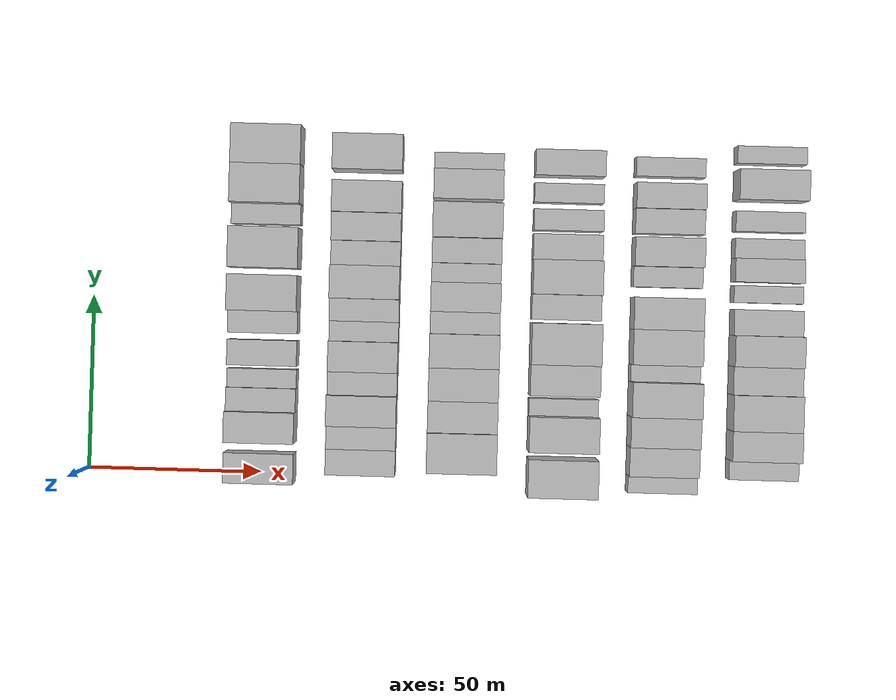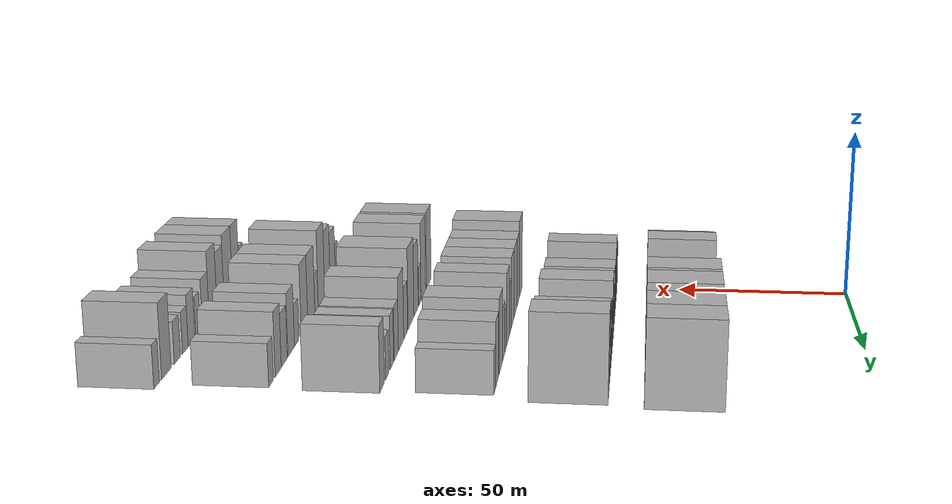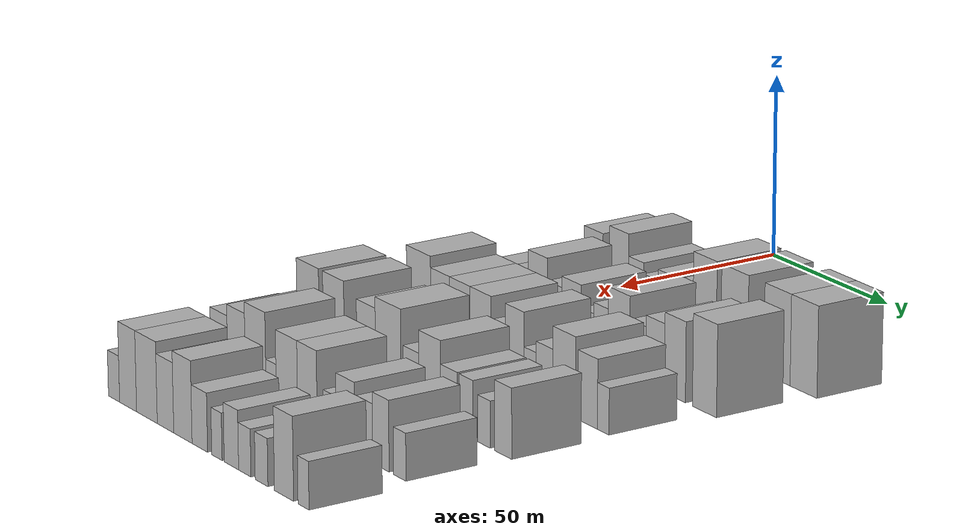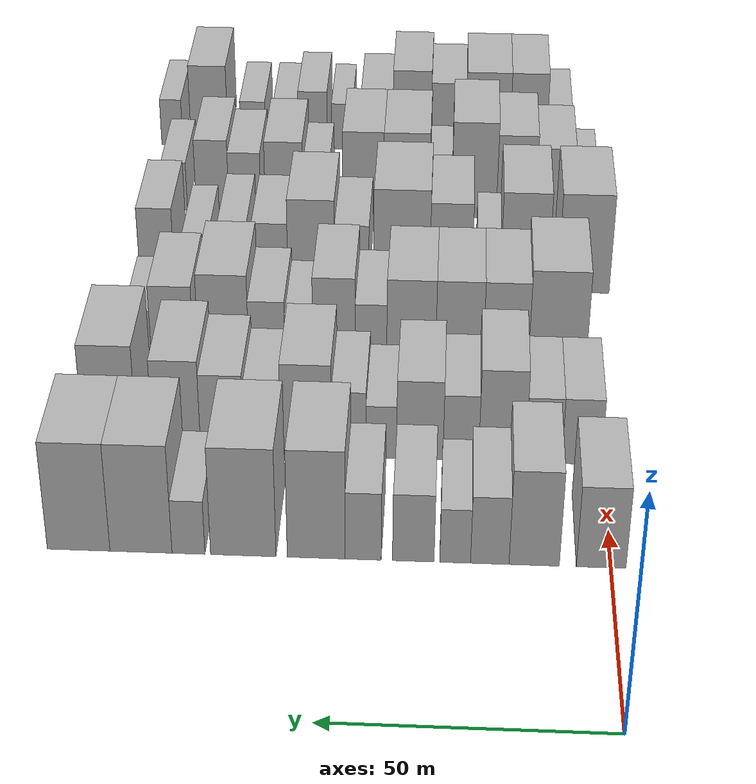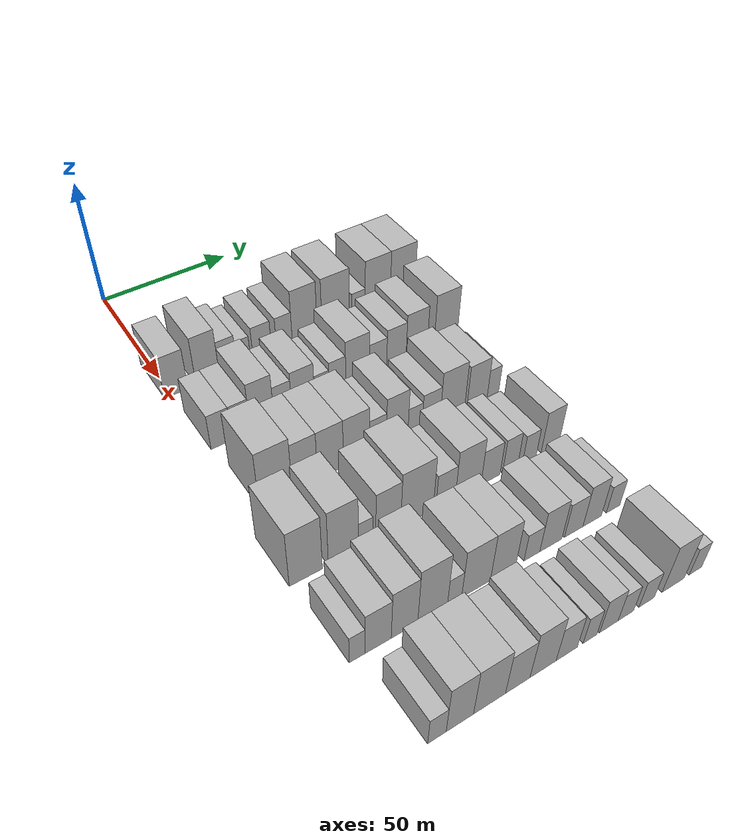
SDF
<sdf version="1.6">
 <world name="default">
  <model name="building_58">
   <static>1</static>
   <pose>50.0000 1.8317 0 0.000000 0.000000 0.000000</pose>
   <link name="link">
    <pose>0 0 9.00 0 0 0</pose>
    <collision name="collision"><geometry><box><size>20.0000 8.6884 18.0000</size></box></geometry></collision>
    <visual name="visual">
     <cast_shadows>0</cast_shadows>
     <geometry><box><size>20.0000 8.6884 18.0000</size></box></geometry>
     <material>
      <script>
       <uri>model://HANNAS_wall/materials/scripts</uri>
       <uri>model://HANNAS_wall/materials/textures</uri>
       <name>vrc/HANNAS_wall</name>
      </script>
     </material>
    </visual>
   </link>
  </model>
  <model name="building_59">
   <static>1</static>
   <pose>50.0000 13.5879 0 0.000000 0.000000 0.000000</pose>
   <link name="link">
    <pose>0 0 10.50 0 0 0</pose>
    <collision name="collision"><geometry><box><size>20.0000 8.8240 21.0000</size></box></geometry></collision>
    <visual name="visual">
     <cast_shadows>0</cast_shadows>
     <geometry><box><size>20.0000 8.8240 21.0000</size></box></geometry>
     <material>
      <script>
       <uri>model://HANNAS_wall/materials/scripts</uri>
       <uri>model://HANNAS_wall/materials/textures</uri>
       <name>vrc/HANNAS_wall</name>
      </script>
     </material>
    </visual>
   </link>
  </model>
  <model name="building_60">
   <static>1</static>
   <pose>50.0000 21.3913 0 0.000000 0.000000 0.000000</pose>
   <link name="link">
    <pose>0 0 7.50 0 0 0</pose>
    <collision name="collision"><geometry><box><size>20.0000 6.7829 15.0000</size></box></geometry></collision>
    <visual name="visual">
     <cast_shadows>0</cast_shadows>
     <geometry><box><size>20.0000 6.7829 15.0000</size></box></geometry>
     <material>
      <script>
       <uri>model://HANNAS_wall/materials/scripts</uri>
       <uri>model://HANNAS_wall/materials/textures</uri>
       <name>vrc/HANNAS_wall</name>
      </script>
     </material>
    </visual>
   </link>
  </model>
  <model name="building_61">
   <static>1</static>
   <pose>50.0000 27.4907 0 0.000000 0.000000 0.000000</pose>
   <link name="link">
    <pose>0 0 6.00 0 0 0</pose>
    <collision name="collision"><geometry><box><size>20.0000 5.4158 12.0000</size></box></geometry></collision>
    <visual name="visual">
     <cast_shadows>0</cast_shadows>
     <geometry><box><size>20.0000 5.4158 12.0000</size></box></geometry>
     <material>
      <script>
       <uri>model://HANNAS_wall/materials/scripts</uri>
       <uri>model://HANNAS_wall/materials/textures</uri>
       <name>vrc/HANNAS_wall</name>
      </script>
     </material>
    </visual>
   </link>
  </model>
  <model name="building_62">
   <static>1</static>
   <pose>50.0000 34.8672 0 0.000000 0.000000 0.000000</pose>
   <link name="link">
    <pose>0 0 7.50 0 0 0</pose>
    <collision name="collision"><geometry><box><size>20.0000 7.3371 15.0000</size></box></geometry></collision>
    <visual name="visual">
     <cast_shadows>0</cast_shadows>
     <geometry><box><size>20.0000 7.3371 15.0000</size></box></geometry>
     <material>
      <script>
       <uri>model://HANNAS_wall/materials/scripts</uri>
       <uri>model://HANNAS_wall/materials/textures</uri>
       <name>vrc/HANNAS_wall</name>
      </script>
     </material>
    </visual>
   </link>
  </model>
  <model name="building_63">
   <static>1</static>
   <pose>50.0000 43.7235 0 0.000000 0.000000 0.000000</pose>
   <link name="link">
    <pose>0 0 7.50 0 0 0</pose>
    <collision name="collision"><geometry><box><size>20.0000 6.3754 15.0000</size></box></geometry></collision>
    <visual name="visual">
     <cast_shadows>0</cast_shadows>
     <geometry><box><size>20.0000 6.3754 15.0000</size></box></geometry>
     <material>
      <script>
       <uri>model://HANNAS_wall/materials/scripts</uri>
       <uri>model://HANNAS_wall/materials/textures</uri>
       <name>vrc/HANNAS_wall</name>
      </script>
     </material>
    </visual>
   </link>
  </model>
  <model name="building_64">
   <static>1</static>
   <pose>50.0000 52.0384 0 0.000000 0.000000 0.000000</pose>
   <link name="link">
    <pose>0 0 12.00 0 0 0</pose>
    <collision name="collision"><geometry><box><size>20.0000 10.2545 24.0000</size></box></geometry></collision>
    <visual name="visual">
     <cast_shadows>0</cast_shadows>
     <geometry><box><size>20.0000 10.2545 24.0000</size></box></geometry>
     <material>
      <script>
       <uri>model://HANNAS_wall/materials/scripts</uri>
       <uri>model://HANNAS_wall/materials/textures</uri>
       <name>vrc/HANNAS_wall</name>
      </script>
     </material>
    </visual>
   </link>
  </model>
  <model name="building_65">
   <static>1</static>
   <pose>50.0000 64.9755 0 0.000000 0.000000 0.000000</pose>
   <link name="link">
    <pose>0 0 12.00 0 0 0</pose>
    <collision name="collision"><geometry><box><size>20.0000 11.6196 24.0000</size></box></geometry></collision>
    <visual name="visual">
     <cast_shadows>0</cast_shadows>
     <geometry><box><size>20.0000 11.6196 24.0000</size></box></geometry>
     <material>
      <script>
       <uri>model://HANNAS_wall/materials/scripts</uri>
       <uri>model://HANNAS_wall/materials/textures</uri>
       <name>vrc/HANNAS_wall</name>
      </script>
     </material>
    </visual>
   </link>
  </model>
  <model name="building_66">
   <static>1</static>
   <pose>50.0000 74.7130 0 0.000000 0.000000 0.000000</pose>
   <link name="link">
    <pose>0 0 6.00 0 0 0</pose>
    <collision name="collision"><geometry><box><size>20.0000 5.8553 12.0000</size></box></geometry></collision>
    <visual name="visual">
     <cast_shadows>0</cast_shadows>
     <geometry><box><size>20.0000 5.8553 12.0000</size></box></geometry>
     <material>
      <script>
       <uri>model://HANNAS_wall/materials/scripts</uri>
       <uri>model://HANNAS_wall/materials/textures</uri>
       <name>vrc/HANNAS_wall</name>
      </script>
     </material>
    </visual>
   </link>
  </model>
  <model name="building_67">
   <static>1</static>
   <pose>50.0000 83.1827 0 0.000000 0.000000 0.000000</pose>
   <link name="link">
    <pose>0 0 12.00 0 0 0</pose>
    <collision name="collision"><geometry><box><size>20.0000 11.0842 24.0000</size></box></geometry></collision>
    <visual name="visual">
     <cast_shadows>0</cast_shadows>
     <geometry><box><size>20.0000 11.0842 24.0000</size></box></geometry>
     <material>
      <script>
       <uri>model://HANNAS_wall/materials/scripts</uri>
       <uri>model://HANNAS_wall/materials/textures</uri>
       <name>vrc/HANNAS_wall</name>
      </script>
     </material>
    </visual>
   </link>
  </model>
  <model name="building_68">
   <static>1</static>
   <pose>50.0000 94.3247 0 0.000000 0.000000 0.000000</pose>
   <link name="link">
    <pose>0 0 12.00 0 0 0</pose>
    <collision name="collision"><geometry><box><size>20.0000 11.1998 24.0000</size></box></geometry></collision>
    <visual name="visual">
     <cast_shadows>0</cast_shadows>
     <geometry><box><size>20.0000 11.1998 24.0000</size></box></geometry>
     <material>
      <script>
       <uri>model://HANNAS_wall/materials/scripts</uri>
       <uri>model://HANNAS_wall/materials/textures</uri>
       <name>vrc/HANNAS_wall</name>
      </script>
     </material>
    </visual>
   </link>
  </model>
  <model name="building_173">
   <static>1</static>
   <pose>79.0000 4.1251 0 0.000000 0.000000 0.000000</pose>
   <link name="link">
    <pose>0 0 7.50 0 0 0</pose>
    <collision name="collision"><geometry><box><size>20.0000 7.4113 15.0000</size></box></geometry></collision>
    <visual name="visual">
     <cast_shadows>0</cast_shadows>
     <geometry><box><size>20.0000 7.4113 15.0000</size></box></geometry>
     <material>
      <script>
       <uri>model://HANNAS_wall/materials/scripts</uri>
       <uri>model://HANNAS_wall/materials/textures</uri>
       <name>vrc/HANNAS_wall</name>
      </script>
     </material>
    </visual>
   </link>
  </model>
  <model name="building_174">
   <static>1</static>
   <pose>79.0000 11.2151 0 0.000000 0.000000 0.000000</pose>
   <link name="link">
    <pose>0 0 7.50 0 0 0</pose>
    <collision name="collision"><geometry><box><size>20.0000 6.7687 15.0000</size></box></geometry></collision>
    <visual name="visual">
     <cast_shadows>0</cast_shadows>
     <geometry><box><size>20.0000 6.7687 15.0000</size></box></geometry>
     <material>
      <script>
       <uri>model://HANNAS_wall/materials/scripts</uri>
       <uri>model://HANNAS_wall/materials/textures</uri>
       <name>vrc/HANNAS_wall</name>
      </script>
     </material>
    </visual>
   </link>
  </model>
  <model name="building_175">
   <static>1</static>
   <pose>79.0000 18.9994 0 0.000000 0.000000 0.000000</pose>
   <link name="link">
    <pose>0 0 10.50 0 0 0</pose>
    <collision name="collision"><geometry><box><size>20.0000 8.7999 21.0000</size></box></geometry></collision>
    <visual name="visual">
     <cast_shadows>0</cast_shadows>
     <geometry><box><size>20.0000 8.7999 21.0000</size></box></geometry>
     <material>
      <script>
       <uri>model://HANNAS_wall/materials/scripts</uri>
       <uri>model://HANNAS_wall/materials/textures</uri>
       <name>vrc/HANNAS_wall</name>
      </script>
     </material>
    </visual>
   </link>
  </model>
  <model name="building_176">
   <static>1</static>
   <pose>79.0000 26.7349 0 0.000000 0.000000 0.000000</pose>
   <link name="link">
    <pose>0 0 7.50 0 0 0</pose>
    <collision name="collision"><geometry><box><size>20.0000 6.6711 15.0000</size></box></geometry></collision>
    <visual name="visual">
     <cast_shadows>0</cast_shadows>
     <geometry><box><size>20.0000 6.6711 15.0000</size></box></geometry>
     <material>
      <script>
       <uri>model://HANNAS_wall/materials/scripts</uri>
       <uri>model://HANNAS_wall/materials/textures</uri>
       <name>vrc/HANNAS_wall</name>
      </script>
     </material>
    </visual>
   </link>
  </model>
  <model name="building_177">
   <static>1</static>
   <pose>79.0000 34.4479 0 0.000000 0.000000 0.000000</pose>
   <link name="link">
    <pose>0 0 9.00 0 0 0</pose>
    <collision name="collision"><geometry><box><size>20.0000 8.7549 18.0000</size></box></geometry></collision>
    <visual name="visual">
     <cast_shadows>0</cast_shadows>
     <geometry><box><size>20.0000 8.7549 18.0000</size></box></geometry>
     <material>
      <script>
       <uri>model://HANNAS_wall/materials/scripts</uri>
       <uri>model://HANNAS_wall/materials/textures</uri>
       <name>vrc/HANNAS_wall</name>
      </script>
     </material>
    </visual>
   </link>
  </model>
  <model name="building_178">
   <static>1</static>
   <pose>79.0000 41.7142 0 0.000000 0.000000 0.000000</pose>
   <link name="link">
    <pose>0 0 6.00 0 0 0</pose>
    <collision name="collision"><geometry><box><size>20.0000 5.7777 12.0000</size></box></geometry></collision>
    <visual name="visual">
     <cast_shadows>0</cast_shadows>
     <geometry><box><size>20.0000 5.7777 12.0000</size></box></geometry>
     <material>
      <script>
       <uri>model://HANNAS_wall/materials/scripts</uri>
       <uri>model://HANNAS_wall/materials/textures</uri>
       <name>vrc/HANNAS_wall</name>
      </script>
     </material>
    </visual>
   </link>
  </model>
  <model name="building_179">
   <static>1</static>
   <pose>79.0000 47.8528 0 0.000000 0.000000 0.000000</pose>
   <link name="link">
    <pose>0 0 7.50 0 0 0</pose>
    <collision name="collision"><geometry><box><size>20.0000 6.4996 15.0000</size></box></geometry></collision>
    <visual name="visual">
     <cast_shadows>0</cast_shadows>
     <geometry><box><size>20.0000 6.4996 15.0000</size></box></geometry>
     <material>
      <script>
       <uri>model://HANNAS_wall/materials/scripts</uri>
       <uri>model://HANNAS_wall/materials/textures</uri>
       <name>vrc/HANNAS_wall</name>
      </script>
     </material>
    </visual>
   </link>
  </model>
  <model name="building_180">
   <static>1</static>
   <pose>79.0000 55.8629 0 0.000000 0.000000 0.000000</pose>
   <link name="link">
    <pose>0 0 10.50 0 0 0</pose>
    <collision name="collision"><geometry><box><size>20.0000 9.5205 21.0000</size></box></geometry></collision>
    <visual name="visual">
     <cast_shadows>0</cast_shadows>
     <geometry><box><size>20.0000 9.5205 21.0000</size></box></geometry>
     <material>
      <script>
       <uri>model://HANNAS_wall/materials/scripts</uri>
       <uri>model://HANNAS_wall/materials/textures</uri>
       <name>vrc/HANNAS_wall</name>
      </script>
     </material>
    </visual>
   </link>
  </model>
  <model name="building_181">
   <static>1</static>
   <pose>79.0000 64.1495 0 0.000000 0.000000 0.000000</pose>
   <link name="link">
    <pose>0 0 7.50 0 0 0</pose>
    <collision name="collision"><geometry><box><size>20.0000 7.0528 15.0000</size></box></geometry></collision>
    <visual name="visual">
     <cast_shadows>0</cast_shadows>
     <geometry><box><size>20.0000 7.0528 15.0000</size></box></geometry>
     <material>
      <script>
       <uri>model://HANNAS_wall/materials/scripts</uri>
       <uri>model://HANNAS_wall/materials/textures</uri>
       <name>vrc/HANNAS_wall</name>
      </script>
     </material>
    </visual>
   </link>
  </model>
  <model name="building_182">
   <static>1</static>
   <pose>79.0000 71.7193 0 0.000000 0.000000 0.000000</pose>
   <link name="link">
    <pose>0 0 9.00 0 0 0</pose>
    <collision name="collision"><geometry><box><size>20.0000 8.0867 18.0000</size></box></geometry></collision>
    <visual name="visual">
     <cast_shadows>0</cast_shadows>
     <geometry><box><size>20.0000 8.0867 18.0000</size></box></geometry>
     <material>
      <script>
       <uri>model://HANNAS_wall/materials/scripts</uri>
       <uri>model://HANNAS_wall/materials/textures</uri>
       <name>vrc/HANNAS_wall</name>
      </script>
     </material>
    </visual>
   </link>
  </model>
  <model name="building_183">
   <static>1</static>
   <pose>79.0000 80.2671 0 0.000000 0.000000 0.000000</pose>
   <link name="link">
    <pose>0 0 10.50 0 0 0</pose>
    <collision name="collision"><geometry><box><size>20.0000 9.0089 21.0000</size></box></geometry></collision>
    <visual name="visual">
     <cast_shadows>0</cast_shadows>
     <geometry><box><size>20.0000 9.0089 21.0000</size></box></geometry>
     <material>
      <script>
       <uri>model://HANNAS_wall/materials/scripts</uri>
       <uri>model://HANNAS_wall/materials/textures</uri>
       <name>vrc/HANNAS_wall</name>
      </script>
     </material>
    </visual>
   </link>
  </model>
  <model name="building_184">
   <static>1</static>
   <pose>79.0000 92.8549 0 0.000000 0.000000 0.000000</pose>
   <link name="link">
    <pose>0 0 12.00 0 0 0</pose>
    <collision name="collision"><geometry><box><size>20.0000 10.1667 24.0000</size></box></geometry></collision>
    <visual name="visual">
     <cast_shadows>0</cast_shadows>
     <geometry><box><size>20.0000 10.1667 24.0000</size></box></geometry>
     <material>
      <script>
       <uri>model://HANNAS_wall/materials/scripts</uri>
       <uri>model://HANNAS_wall/materials/textures</uri>
       <name>vrc/HANNAS_wall</name>
      </script>
     </material>
    </visual>
   </link>
  </model>
  <model name="building_292">
   <static>1</static>
   <pose>108.0000 7.8680 0 0.000000 0.000000 0.000000</pose>
   <link name="link">
    <pose>0 0 12.00 0 0 0</pose>
    <collision name="collision"><geometry><box><size>20.0000 11.4411 24.0000</size></box></geometry></collision>
    <visual name="visual">
     <cast_shadows>0</cast_shadows>
     <geometry><box><size>20.0000 11.4411 24.0000</size></box></geometry>
     <material>
      <script>
       <uri>model://HANNAS_wall/materials/scripts</uri>
       <uri>model://HANNAS_wall/materials/textures</uri>
       <name>vrc/HANNAS_wall</name>
      </script>
     </material>
    </visual>
   </link>
  </model>
  <model name="building_293">
   <static>1</static>
   <pose>108.0000 18.0788 0 0.000000 0.000000 0.000000</pose>
   <link name="link">
    <pose>0 0 10.50 0 0 0</pose>
    <collision name="collision"><geometry><box><size>20.0000 8.9805 21.0000</size></box></geometry></collision>
    <visual name="visual">
     <cast_shadows>0</cast_shadows>
     <geometry><box><size>20.0000 8.9805 21.0000</size></box></geometry>
     <material>
      <script>
       <uri>model://HANNAS_wall/materials/scripts</uri>
       <uri>model://HANNAS_wall/materials/textures</uri>
       <name>vrc/HANNAS_wall</name>
      </script>
     </material>
    </visual>
   </link>
  </model>
  <model name="building_294">
   <static>1</static>
   <pose>108.0000 27.2938 0 0.000000 0.000000 0.000000</pose>
   <link name="link">
    <pose>0 0 10.50 0 0 0</pose>
    <collision name="collision"><geometry><box><size>20.0000 9.4496 21.0000</size></box></geometry></collision>
    <visual name="visual">
     <cast_shadows>0</cast_shadows>
     <geometry><box><size>20.0000 9.4496 21.0000</size></box></geometry>
     <material>
      <script>
       <uri>model://HANNAS_wall/materials/scripts</uri>
       <uri>model://HANNAS_wall/materials/textures</uri>
       <name>vrc/HANNAS_wall</name>
      </script>
     </material>
    </visual>
   </link>
  </model>
  <model name="building_295">
   <static>1</static>
   <pose>108.0000 36.8907 0 0.000000 0.000000 0.000000</pose>
   <link name="link">
    <pose>0 0 10.50 0 0 0</pose>
    <collision name="collision"><geometry><box><size>20.0000 9.7441 21.0000</size></box></geometry></collision>
    <visual name="visual">
     <cast_shadows>0</cast_shadows>
     <geometry><box><size>20.0000 9.7441 21.0000</size></box></geometry>
     <material>
      <script>
       <uri>model://HANNAS_wall/materials/scripts</uri>
       <uri>model://HANNAS_wall/materials/textures</uri>
       <name>vrc/HANNAS_wall</name>
      </script>
     </material>
    </visual>
   </link>
  </model>
  <model name="building_296">
   <static>1</static>
   <pose>108.0000 44.9215 0 0.000000 0.000000 0.000000</pose>
   <link name="link">
    <pose>0 0 7.50 0 0 0</pose>
    <collision name="collision"><geometry><box><size>20.0000 6.3176 15.0000</size></box></geometry></collision>
    <visual name="visual">
     <cast_shadows>0</cast_shadows>
     <geometry><box><size>20.0000 6.3176 15.0000</size></box></geometry>
     <material>
      <script>
       <uri>model://HANNAS_wall/materials/scripts</uri>
       <uri>model://HANNAS_wall/materials/textures</uri>
       <name>vrc/HANNAS_wall</name>
      </script>
     </material>
    </visual>
   </link>
  </model>
  <model name="building_297">
   <static>1</static>
   <pose>108.0000 52.2861 0 0.000000 0.000000 0.000000</pose>
   <link name="link">
    <pose>0 0 10.50 0 0 0</pose>
    <collision name="collision"><geometry><box><size>20.0000 8.4115 21.0000</size></box></geometry></collision>
    <visual name="visual">
     <cast_shadows>0</cast_shadows>
     <geometry><box><size>20.0000 8.4115 21.0000</size></box></geometry>
     <material>
      <script>
       <uri>model://HANNAS_wall/materials/scripts</uri>
       <uri>model://HANNAS_wall/materials/textures</uri>
       <name>vrc/HANNAS_wall</name>
      </script>
     </material>
    </visual>
   </link>
  </model>
  <model name="building_298">
   <static>1</static>
   <pose>108.0000 59.2871 0 0.000000 0.000000 0.000000</pose>
   <link name="link">
    <pose>0 0 6.00 0 0 0</pose>
    <collision name="collision"><geometry><box><size>20.0000 5.5906 12.0000</size></box></geometry></collision>
    <visual name="visual">
     <cast_shadows>0</cast_shadows>
     <geometry><box><size>20.0000 5.5906 12.0000</size></box></geometry>
     <material>
      <script>
       <uri>model://HANNAS_wall/materials/scripts</uri>
       <uri>model://HANNAS_wall/materials/textures</uri>
       <name>vrc/HANNAS_wall</name>
      </script>
     </material>
    </visual>
   </link>
  </model>
  <model name="building_299">
   <static>1</static>
   <pose>108.0000 65.7135 0 0.000000 0.000000 0.000000</pose>
   <link name="link">
    <pose>0 0 7.50 0 0 0</pose>
    <collision name="collision"><geometry><box><size>20.0000 7.2622 15.0000</size></box></geometry></collision>
    <visual name="visual">
     <cast_shadows>0</cast_shadows>
     <geometry><box><size>20.0000 7.2622 15.0000</size></box></geometry>
     <material>
      <script>
       <uri>model://HANNAS_wall/materials/scripts</uri>
       <uri>model://HANNAS_wall/materials/textures</uri>
       <name>vrc/HANNAS_wall</name>
      </script>
     </material>
    </visual>
   </link>
  </model>
  <model name="building_300">
   <static>1</static>
   <pose>108.0000 74.3826 0 0.000000 0.000000 0.000000</pose>
   <link name="link">
    <pose>0 0 10.50 0 0 0</pose>
    <collision name="collision"><geometry><box><size>20.0000 10.0759 21.0000</size></box></geometry></collision>
    <visual name="visual">
     <cast_shadows>0</cast_shadows>
     <geometry><box><size>20.0000 10.0759 21.0000</size></box></geometry>
     <material>
      <script>
       <uri>model://HANNAS_wall/materials/scripts</uri>
       <uri>model://HANNAS_wall/materials/textures</uri>
       <name>vrc/HANNAS_wall</name>
      </script>
     </material>
    </visual>
   </link>
  </model>
  <model name="building_301">
   <static>1</static>
   <pose>108.0000 84.6795 0 0.000000 0.000000 0.000000</pose>
   <link name="link">
    <pose>0 0 9.00 0 0 0</pose>
    <collision name="collision"><geometry><box><size>20.0000 8.5179 18.0000</size></box></geometry></collision>
    <visual name="visual">
     <cast_shadows>0</cast_shadows>
     <geometry><box><size>20.0000 8.5179 18.0000</size></box></geometry>
     <material>
      <script>
       <uri>model://HANNAS_wall/materials/scripts</uri>
       <uri>model://HANNAS_wall/materials/textures</uri>
       <name>vrc/HANNAS_wall</name>
      </script>
     </material>
    </visual>
   </link>
  </model>
  <model name="building_302">
   <static>1</static>
   <pose>108.0000 91.4038 0 0.000000 0.000000 0.000000</pose>
   <link name="link">
    <pose>0 0 6.00 0 0 0</pose>
    <collision name="collision"><geometry><box><size>20.0000 4.9309 12.0000</size></box></geometry></collision>
    <visual name="visual">
     <cast_shadows>0</cast_shadows>
     <geometry><box><size>20.0000 4.9309 12.0000</size></box></geometry>
     <material>
      <script>
       <uri>model://HANNAS_wall/materials/scripts</uri>
       <uri>model://HANNAS_wall/materials/textures</uri>
       <name>vrc/HANNAS_wall</name>
      </script>
     </material>
    </visual>
   </link>
  </model>
  <model name="building_403">
   <static>1</static>
   <pose>137.0000 1.4146 0 0.000000 0.000000 0.000000</pose>
   <link name="link">
    <pose>0 0 12.00 0 0 0</pose>
    <collision name="collision"><geometry><box><size>20.0000 10.8441 24.0000</size></box></geometry></collision>
    <visual name="visual">
     <cast_shadows>0</cast_shadows>
     <geometry><box><size>20.0000 10.8441 24.0000</size></box></geometry>
     <material>
      <script>
       <uri>model://HANNAS_wall/materials/scripts</uri>
       <uri>model://HANNAS_wall/materials/textures</uri>
       <name>vrc/HANNAS_wall</name>
      </script>
     </material>
    </visual>
   </link>
  </model>
  <model name="building_404">
   <static>1</static>
   <pose>137.0000 13.8911 0 0.000000 0.000000 0.000000</pose>
   <link name="link">
    <pose>0 0 12.00 0 0 0</pose>
    <collision name="collision"><geometry><box><size>20.0000 10.1088 24.0000</size></box></geometry></collision>
    <visual name="visual">
     <cast_shadows>0</cast_shadows>
     <geometry><box><size>20.0000 10.1088 24.0000</size></box></geometry>
     <material>
      <script>
       <uri>model://HANNAS_wall/materials/scripts</uri>
       <uri>model://HANNAS_wall/materials/textures</uri>
       <name>vrc/HANNAS_wall</name>
      </script>
     </material>
    </visual>
   </link>
  </model>
  <model name="building_405">
   <static>1</static>
   <pose>137.0000 21.4360 0 0.000000 0.000000 0.000000</pose>
   <link name="link">
    <pose>0 0 6.00 0 0 0</pose>
    <collision name="collision"><geometry><box><size>20.0000 4.9809 12.0000</size></box></geometry></collision>
    <visual name="visual">
     <cast_shadows>0</cast_shadows>
     <geometry><box><size>20.0000 4.9809 12.0000</size></box></geometry>
     <material>
      <script>
       <uri>model://HANNAS_wall/materials/scripts</uri>
       <uri>model://HANNAS_wall/materials/textures</uri>
       <name>vrc/HANNAS_wall</name>
      </script>
     </material>
    </visual>
   </link>
  </model>
  <model name="building_406">
   <static>1</static>
   <pose>137.0000 29.3477 0 0.000000 0.000000 0.000000</pose>
   <link name="link">
    <pose>0 0 10.50 0 0 0</pose>
    <collision name="collision"><geometry><box><size>20.0000 8.8425 21.0000</size></box></geometry></collision>
    <visual name="visual">
     <cast_shadows>0</cast_shadows>
     <geometry><box><size>20.0000 8.8425 21.0000</size></box></geometry>
     <material>
      <script>
       <uri>model://HANNAS_wall/materials/scripts</uri>
       <uri>model://HANNAS_wall/materials/textures</uri>
       <name>vrc/HANNAS_wall</name>
      </script>
     </material>
    </visual>
   </link>
  </model>
  <model name="building_407">
   <static>1</static>
   <pose>137.0000 39.6900 0 0.000000 0.000000 0.000000</pose>
   <link name="link">
    <pose>0 0 12.00 0 0 0</pose>
    <collision name="collision"><geometry><box><size>20.0000 11.8421 24.0000</size></box></geometry></collision>
    <visual name="visual">
     <cast_shadows>0</cast_shadows>
     <geometry><box><size>20.0000 11.8421 24.0000</size></box></geometry>
     <material>
      <script>
       <uri>model://HANNAS_wall/materials/scripts</uri>
       <uri>model://HANNAS_wall/materials/textures</uri>
       <name>vrc/HANNAS_wall</name>
      </script>
     </material>
    </visual>
   </link>
  </model>
  <model name="building_408">
   <static>1</static>
   <pose>137.0000 50.2348 0 0.000000 0.000000 0.000000</pose>
   <link name="link">
    <pose>0 0 7.50 0 0 0</pose>
    <collision name="collision"><geometry><box><size>20.0000 7.2475 15.0000</size></box></geometry></collision>
    <visual name="visual">
     <cast_shadows>0</cast_shadows>
     <geometry><box><size>20.0000 7.2475 15.0000</size></box></geometry>
     <material>
      <script>
       <uri>model://HANNAS_wall/materials/scripts</uri>
       <uri>model://HANNAS_wall/materials/textures</uri>
       <name>vrc/HANNAS_wall</name>
      </script>
     </material>
    </visual>
   </link>
  </model>
  <model name="building_409">
   <static>1</static>
   <pose>137.0000 58.7997 0 0.000000 0.000000 0.000000</pose>
   <link name="link">
    <pose>0 0 10.50 0 0 0</pose>
    <collision name="collision"><geometry><box><size>20.0000 9.8822 21.0000</size></box></geometry></collision>
    <visual name="visual">
     <cast_shadows>0</cast_shadows>
     <geometry><box><size>20.0000 9.8822 21.0000</size></box></geometry>
     <material>
      <script>
       <uri>model://HANNAS_wall/materials/scripts</uri>
       <uri>model://HANNAS_wall/materials/textures</uri>
       <name>vrc/HANNAS_wall</name>
      </script>
     </material>
    </visual>
   </link>
  </model>
  <model name="building_410">
   <static>1</static>
   <pose>137.0000 67.4754 0 0.000000 0.000000 0.000000</pose>
   <link name="link">
    <pose>0 0 7.50 0 0 0</pose>
    <collision name="collision"><geometry><box><size>20.0000 7.4692 15.0000</size></box></geometry></collision>
    <visual name="visual">
     <cast_shadows>0</cast_shadows>
     <geometry><box><size>20.0000 7.4692 15.0000</size></box></geometry>
     <material>
      <script>
       <uri>model://HANNAS_wall/materials/scripts</uri>
       <uri>model://HANNAS_wall/materials/textures</uri>
       <name>vrc/HANNAS_wall</name>
      </script>
     </material>
    </visual>
   </link>
  </model>
  <model name="building_411">
   <static>1</static>
   <pose>137.0000 75.2491 0 0.000000 0.000000 0.000000</pose>
   <link name="link">
    <pose>0 0 7.50 0 0 0</pose>
    <collision name="collision"><geometry><box><size>20.0000 6.0781 15.0000</size></box></geometry></collision>
    <visual name="visual">
     <cast_shadows>0</cast_shadows>
     <geometry><box><size>20.0000 6.0781 15.0000</size></box></geometry>
     <material>
      <script>
       <uri>model://HANNAS_wall/materials/scripts</uri>
       <uri>model://HANNAS_wall/materials/textures</uri>
       <name>vrc/HANNAS_wall</name>
      </script>
     </material>
    </visual>
   </link>
  </model>
  <model name="building_412">
   <static>1</static>
   <pose>137.0000 83.0641 0 0.000000 0.000000 0.000000</pose>
   <link name="link">
    <pose>0 0 6.00 0 0 0</pose>
    <collision name="collision"><geometry><box><size>20.0000 5.5519 12.0000</size></box></geometry></collision>
    <visual name="visual">
     <cast_shadows>0</cast_shadows>
     <geometry><box><size>20.0000 5.5519 12.0000</size></box></geometry>
     <material>
      <script>
       <uri>model://HANNAS_wall/materials/scripts</uri>
       <uri>model://HANNAS_wall/materials/textures</uri>
       <name>vrc/HANNAS_wall</name>
      </script>
     </material>
    </visual>
   </link>
  </model>
  <model name="building_413">
   <static>1</static>
   <pose>137.0000 91.5312 0 0.000000 0.000000 0.000000</pose>
   <link name="link">
    <pose>0 0 9.00 0 0 0</pose>
    <collision name="collision"><geometry><box><size>20.0000 7.3823 18.0000</size></box></geometry></collision>
    <visual name="visual">
     <cast_shadows>0</cast_shadows>
     <geometry><box><size>20.0000 7.3823 18.0000</size></box></geometry>
     <material>
      <script>
       <uri>model://HANNAS_wall/materials/scripts</uri>
       <uri>model://HANNAS_wall/materials/textures</uri>
       <name>vrc/HANNAS_wall</name>
      </script>
     </material>
    </visual>
   </link>
  </model>
  <model name="building_514">
   <static>1</static>
   <pose>166.0000 0.0328 0 0.000000 0.000000 0.000000</pose>
   <link name="link">
    <pose>0 0 6.00 0 0 0</pose>
    <collision name="collision"><geometry><box><size>20.0000 4.9490 12.0000</size></box></geometry></collision>
    <visual name="visual">
     <cast_shadows>0</cast_shadows>
     <geometry><box><size>20.0000 4.9490 12.0000</size></box></geometry>
     <material>
      <script>
       <uri>model://HANNAS_wall/materials/scripts</uri>
       <uri>model://HANNAS_wall/materials/textures</uri>
       <name>vrc/HANNAS_wall</name>
      </script>
     </material>
    </visual>
   </link>
  </model>
  <model name="building_515">
   <static>1</static>
   <pose>166.0000 6.6882 0 0.000000 0.000000 0.000000</pose>
   <link name="link">
    <pose>0 0 9.00 0 0 0</pose>
    <collision name="collision"><geometry><box><size>20.0000 8.3618 18.0000</size></box></geometry></collision>
    <visual name="visual">
     <cast_shadows>0</cast_shadows>
     <geometry><box><size>20.0000 8.3618 18.0000</size></box></geometry>
     <material>
      <script>
       <uri>model://HANNAS_wall/materials/scripts</uri>
       <uri>model://HANNAS_wall/materials/textures</uri>
       <name>vrc/HANNAS_wall</name>
      </script>
     </material>
    </visual>
   </link>
  </model>
  <model name="building_516">
   <static>1</static>
   <pose>166.0000 15.2108 0 0.000000 0.000000 0.000000</pose>
   <link name="link">
    <pose>0 0 10.50 0 0 0</pose>
    <collision name="collision"><geometry><box><size>20.0000 8.6834 21.0000</size></box></geometry></collision>
    <visual name="visual">
     <cast_shadows>0</cast_shadows>
     <geometry><box><size>20.0000 8.6834 21.0000</size></box></geometry>
     <material>
      <script>
       <uri>model://HANNAS_wall/materials/scripts</uri>
       <uri>model://HANNAS_wall/materials/textures</uri>
       <name>vrc/HANNAS_wall</name>
      </script>
     </material>
    </visual>
   </link>
  </model>
  <model name="building_517">
   <static>1</static>
   <pose>166.0000 24.5304 0 0.000000 0.000000 0.000000</pose>
   <link name="link">
    <pose>0 0 12.00 0 0 0</pose>
    <collision name="collision"><geometry><box><size>20.0000 9.9559 24.0000</size></box></geometry></collision>
    <visual name="visual">
     <cast_shadows>0</cast_shadows>
     <geometry><box><size>20.0000 9.9559 24.0000</size></box></geometry>
     <material>
      <script>
       <uri>model://HANNAS_wall/materials/scripts</uri>
       <uri>model://HANNAS_wall/materials/textures</uri>
       <name>vrc/HANNAS_wall</name>
      </script>
     </material>
    </visual>
   </link>
  </model>
  <model name="building_518">
   <static>1</static>
   <pose>166.0000 31.9733 0 0.000000 0.000000 0.000000</pose>
   <link name="link">
    <pose>0 0 6.00 0 0 0</pose>
    <collision name="collision"><geometry><box><size>20.0000 4.9300 12.0000</size></box></geometry></collision>
    <visual name="visual">
     <cast_shadows>0</cast_shadows>
     <geometry><box><size>20.0000 4.9300 12.0000</size></box></geometry>
     <material>
      <script>
       <uri>model://HANNAS_wall/materials/scripts</uri>
       <uri>model://HANNAS_wall/materials/textures</uri>
       <name>vrc/HANNAS_wall</name>
      </script>
     </material>
    </visual>
   </link>
  </model>
  <model name="building_519">
   <static>1</static>
   <pose>166.0000 39.5114 0 0.000000 0.000000 0.000000</pose>
   <link name="link">
    <pose>0 0 10.50 0 0 0</pose>
    <collision name="collision"><geometry><box><size>20.0000 10.1462 21.0000</size></box></geometry></collision>
    <visual name="visual">
     <cast_shadows>0</cast_shadows>
     <geometry><box><size>20.0000 10.1462 21.0000</size></box></geometry>
     <material>
      <script>
       <uri>model://HANNAS_wall/materials/scripts</uri>
       <uri>model://HANNAS_wall/materials/textures</uri>
       <name>vrc/HANNAS_wall</name>
      </script>
     </material>
    </visual>
   </link>
  </model>
  <model name="building_520">
   <static>1</static>
   <pose>166.0000 49.1635 0 0.000000 0.000000 0.000000</pose>
   <link name="link">
    <pose>0 0 10.50 0 0 0</pose>
    <collision name="collision"><geometry><box><size>20.0000 9.1581 21.0000</size></box></geometry></collision>
    <visual name="visual">
     <cast_shadows>0</cast_shadows>
     <geometry><box><size>20.0000 9.1581 21.0000</size></box></geometry>
     <material>
      <script>
       <uri>model://HANNAS_wall/materials/scripts</uri>
       <uri>model://HANNAS_wall/materials/textures</uri>
       <name>vrc/HANNAS_wall</name>
      </script>
     </material>
    </visual>
   </link>
  </model>
  <model name="building_521">
   <static>1</static>
   <pose>166.0000 59.6929 0 0.000000 0.000000 0.000000</pose>
   <link name="link">
    <pose>0 0 6.00 0 0 0</pose>
    <collision name="collision"><geometry><box><size>20.0000 5.9006 12.0000</size></box></geometry></collision>
    <visual name="visual">
     <cast_shadows>0</cast_shadows>
     <geometry><box><size>20.0000 5.9006 12.0000</size></box></geometry>
     <material>
      <script>
       <uri>model://HANNAS_wall/materials/scripts</uri>
       <uri>model://HANNAS_wall/materials/textures</uri>
       <name>vrc/HANNAS_wall</name>
      </script>
     </material>
    </visual>
   </link>
  </model>
  <model name="building_522">
   <static>1</static>
   <pose>166.0000 66.8392 0 0.000000 0.000000 0.000000</pose>
   <link name="link">
    <pose>0 0 9.00 0 0 0</pose>
    <collision name="collision"><geometry><box><size>20.0000 8.3919 18.0000</size></box></geometry></collision>
    <visual name="visual">
     <cast_shadows>0</cast_shadows>
     <geometry><box><size>20.0000 8.3919 18.0000</size></box></geometry>
     <material>
      <script>
       <uri>model://HANNAS_wall/materials/scripts</uri>
       <uri>model://HANNAS_wall/materials/textures</uri>
       <name>vrc/HANNAS_wall</name>
      </script>
     </material>
    </visual>
   </link>
  </model>
  <model name="building_523">
   <static>1</static>
   <pose>166.0000 75.6224 0 0.000000 0.000000 0.000000</pose>
   <link name="link">
    <pose>0 0 7.50 0 0 0</pose>
    <collision name="collision"><geometry><box><size>20.0000 7.1745 15.0000</size></box></geometry></collision>
    <visual name="visual">
     <cast_shadows>0</cast_shadows>
     <geometry><box><size>20.0000 7.1745 15.0000</size></box></geometry>
     <material>
      <script>
       <uri>model://HANNAS_wall/materials/scripts</uri>
       <uri>model://HANNAS_wall/materials/textures</uri>
       <name>vrc/HANNAS_wall</name>
      </script>
     </material>
    </visual>
   </link>
  </model>
  <model name="building_524">
   <static>1</static>
   <pose>166.0000 82.8809 0 0.000000 0.000000 0.000000</pose>
   <link name="link">
    <pose>0 0 9.00 0 0 0</pose>
    <collision name="collision"><geometry><box><size>20.0000 7.3426 18.0000</size></box></geometry></collision>
    <visual name="visual">
     <cast_shadows>0</cast_shadows>
     <geometry><box><size>20.0000 7.3426 18.0000</size></box></geometry>
     <material>
      <script>
       <uri>model://HANNAS_wall/materials/scripts</uri>
       <uri>model://HANNAS_wall/materials/textures</uri>
       <name>vrc/HANNAS_wall</name>
      </script>
     </material>
    </visual>
   </link>
  </model>
  <model name="building_525">
   <static>1</static>
   <pose>166.0000 91.3064 0 0.000000 0.000000 0.000000</pose>
   <link name="link">
    <pose>0 0 6.00 0 0 0</pose>
    <collision name="collision"><geometry><box><size>20.0000 5.5083 12.0000</size></box></geometry></collision>
    <visual name="visual">
     <cast_shadows>0</cast_shadows>
     <geometry><box><size>20.0000 5.5083 12.0000</size></box></geometry>
     <material>
      <script>
       <uri>model://HANNAS_wall/materials/scripts</uri>
       <uri>model://HANNAS_wall/materials/textures</uri>
       <name>vrc/HANNAS_wall</name>
      </script>
     </material>
    </visual>
   </link>
  </model>
  <model name="building_629">
   <static>1</static>
   <pose>195.0000 4.9202 0 0.000000 0.000000 0.000000</pose>
   <link name="link">
    <pose>0 0 6.00 0 0 0</pose>
    <collision name="collision"><geometry><box><size>20.0000 5.6493 12.0000</size></box></geometry></collision>
    <visual name="visual">
     <cast_shadows>0</cast_shadows>
     <geometry><box><size>20.0000 5.6493 12.0000</size></box></geometry>
     <material>
      <script>
       <uri>model://HANNAS_wall/materials/scripts</uri>
       <uri>model://HANNAS_wall/materials/textures</uri>
       <name>vrc/HANNAS_wall</name>
      </script>
     </material>
    </visual>
   </link>
  </model>
  <model name="building_630">
   <static>1</static>
   <pose>195.0000 12.0192 0 0.000000 0.000000 0.000000</pose>
   <link name="link">
    <pose>0 0 10.50 0 0 0</pose>
    <collision name="collision"><geometry><box><size>20.0000 8.5486 21.0000</size></box></geometry></collision>
    <visual name="visual">
     <cast_shadows>0</cast_shadows>
     <geometry><box><size>20.0000 8.5486 21.0000</size></box></geometry>
     <material>
      <script>
       <uri>model://HANNAS_wall/materials/scripts</uri>
       <uri>model://HANNAS_wall/materials/textures</uri>
       <name>vrc/HANNAS_wall</name>
      </script>
     </material>
    </visual>
   </link>
  </model>
  <model name="building_631">
   <static>1</static>
   <pose>195.0000 21.4433 0 0.000000 0.000000 0.000000</pose>
   <link name="link">
    <pose>0 0 10.50 0 0 0</pose>
    <collision name="collision"><geometry><box><size>20.0000 10.2997 21.0000</size></box></geometry></collision>
    <visual name="visual">
     <cast_shadows>0</cast_shadows>
     <geometry><box><size>20.0000 10.2997 21.0000</size></box></geometry>
     <material>
      <script>
       <uri>model://HANNAS_wall/materials/scripts</uri>
       <uri>model://HANNAS_wall/materials/textures</uri>
       <name>vrc/HANNAS_wall</name>
      </script>
     </material>
    </visual>
   </link>
  </model>
  <model name="building_632">
   <static>1</static>
   <pose>195.0000 30.6406 0 0.000000 0.000000 0.000000</pose>
   <link name="link">
    <pose>0 0 9.00 0 0 0</pose>
    <collision name="collision"><geometry><box><size>20.0000 8.0950 18.0000</size></box></geometry></collision>
    <visual name="visual">
     <cast_shadows>0</cast_shadows>
     <geometry><box><size>20.0000 8.0950 18.0000</size></box></geometry>
     <material>
      <script>
       <uri>model://HANNAS_wall/materials/scripts</uri>
       <uri>model://HANNAS_wall/materials/textures</uri>
       <name>vrc/HANNAS_wall</name>
      </script>
     </material>
    </visual>
   </link>
  </model>
  <model name="building_633">
   <static>1</static>
   <pose>195.0000 39.1381 0 0.000000 0.000000 0.000000</pose>
   <link name="link">
    <pose>0 0 10.50 0 0 0</pose>
    <collision name="collision"><geometry><box><size>20.0000 8.9000 21.0000</size></box></geometry></collision>
    <visual name="visual">
     <cast_shadows>0</cast_shadows>
     <geometry><box><size>20.0000 8.9000 21.0000</size></box></geometry>
     <material>
      <script>
       <uri>model://HANNAS_wall/materials/scripts</uri>
       <uri>model://HANNAS_wall/materials/textures</uri>
       <name>vrc/HANNAS_wall</name>
      </script>
     </material>
    </visual>
   </link>
  </model>
  <model name="building_634">
   <static>1</static>
   <pose>195.0000 47.3061 0 0.000000 0.000000 0.000000</pose>
   <link name="link">
    <pose>0 0 7.50 0 0 0</pose>
    <collision name="collision"><geometry><box><size>20.0000 7.4360 15.0000</size></box></geometry></collision>
    <visual name="visual">
     <cast_shadows>0</cast_shadows>
     <geometry><box><size>20.0000 7.4360 15.0000</size></box></geometry>
     <material>
      <script>
       <uri>model://HANNAS_wall/materials/scripts</uri>
       <uri>model://HANNAS_wall/materials/textures</uri>
       <name>vrc/HANNAS_wall</name>
      </script>
     </material>
    </visual>
   </link>
  </model>
  <model name="building_635">
   <static>1</static>
   <pose>195.0000 55.4896 0 0.000000 0.000000 0.000000</pose>
   <link name="link">
    <pose>0 0 6.00 0 0 0</pose>
    <collision name="collision"><geometry><box><size>20.0000 4.9310 12.0000</size></box></geometry></collision>
    <visual name="visual">
     <cast_shadows>0</cast_shadows>
     <geometry><box><size>20.0000 4.9310 12.0000</size></box></geometry>
     <material>
      <script>
       <uri>model://HANNAS_wall/materials/scripts</uri>
       <uri>model://HANNAS_wall/materials/textures</uri>
       <name>vrc/HANNAS_wall</name>
      </script>
     </material>
    </visual>
   </link>
  </model>
  <model name="building_636">
   <static>1</static>
   <pose>195.0000 62.3390 0 0.000000 0.000000 0.000000</pose>
   <link name="link">
    <pose>0 0 7.50 0 0 0</pose>
    <collision name="collision"><geometry><box><size>20.0000 6.7679 15.0000</size></box></geometry></collision>
    <visual name="visual">
     <cast_shadows>0</cast_shadows>
     <geometry><box><size>20.0000 6.7679 15.0000</size></box></geometry>
     <material>
      <script>
       <uri>model://HANNAS_wall/materials/scripts</uri>
       <uri>model://HANNAS_wall/materials/textures</uri>
       <name>vrc/HANNAS_wall</name>
      </script>
     </material>
    </visual>
   </link>
  </model>
  <model name="building_637">
   <static>1</static>
   <pose>195.0000 68.5995 0 0.000000 0.000000 0.000000</pose>
   <link name="link">
    <pose>0 0 6.00 0 0 0</pose>
    <collision name="collision"><geometry><box><size>20.0000 5.7531 12.0000</size></box></geometry></collision>
    <visual name="visual">
     <cast_shadows>0</cast_shadows>
     <geometry><box><size>20.0000 5.7531 12.0000</size></box></geometry>
     <material>
      <script>
       <uri>model://HANNAS_wall/materials/scripts</uri>
       <uri>model://HANNAS_wall/materials/textures</uri>
       <name>vrc/HANNAS_wall</name>
      </script>
     </material>
    </visual>
   </link>
  </model>
  <model name="building_638">
   <static>1</static>
   <pose>195.0000 76.4100 0 0.000000 0.000000 0.000000</pose>
   <link name="link">
    <pose>0 0 6.00 0 0 0</pose>
    <collision name="collision"><geometry><box><size>20.0000 5.8678 12.0000</size></box></geometry></collision>
    <visual name="visual">
     <cast_shadows>0</cast_shadows>
     <geometry><box><size>20.0000 5.8678 12.0000</size></box></geometry>
     <material>
      <script>
       <uri>model://HANNAS_wall/materials/scripts</uri>
       <uri>model://HANNAS_wall/materials/textures</uri>
       <name>vrc/HANNAS_wall</name>
      </script>
     </material>
    </visual>
   </link>
  </model>
  <model name="building_639">
   <static>1</static>
   <pose>195.0000 86.7013 0 0.000000 0.000000 0.000000</pose>
   <link name="link">
    <pose>0 0 10.50 0 0 0</pose>
    <collision name="collision"><geometry><box><size>20.0000 8.7148 21.0000</size></box></geometry></collision>
    <visual name="visual">
     <cast_shadows>0</cast_shadows>
     <geometry><box><size>20.0000 8.7148 21.0000</size></box></geometry>
     <material>
      <script>
       <uri>model://HANNAS_wall/materials/scripts</uri>
       <uri>model://HANNAS_wall/materials/textures</uri>
       <name>vrc/HANNAS_wall</name>
      </script>
     </material>
    </visual>
   </link>
  </model>
  <model name="building_640">
   <static>1</static>
   <pose>195.0000 95.5426 0 0.000000 0.000000 0.000000</pose>
   <link name="link">
    <pose>0 0 6.00 0 0 0</pose>
    <collision name="collision"><geometry><box><size>20.0000 4.9679 12.0000</size></box></geometry></collision>
    <visual name="visual">
     <cast_shadows>0</cast_shadows>
     <geometry><box><size>20.0000 4.9679 12.0000</size></box></geometry>
     <material>
      <script>
       <uri>model://HANNAS_wall/materials/scripts</uri>
       <uri>model://HANNAS_wall/materials/textures</uri>
       <name>vrc/HANNAS_wall</name>
      </script>
     </material>
    </visual>
   </link>
  </model>
 </world>
</sdf>
